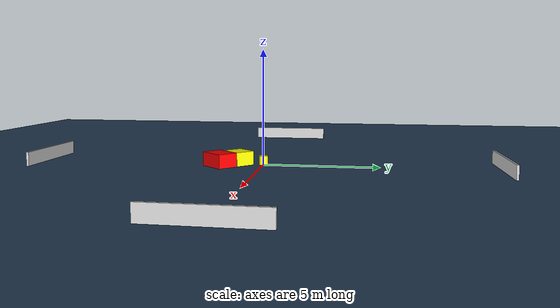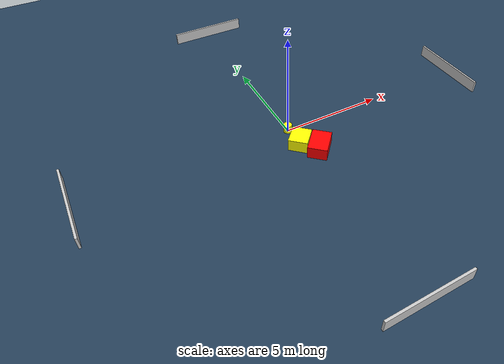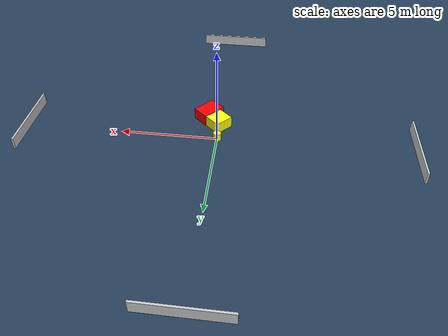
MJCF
<?xml version="1.0" ?>
<mujoco model="generated_environment">
  <option timestep="0.01" integrator="RK4" cone="elliptic"/>
  <default>
    <geom density="1"/>
  </default>
  <asset>
    <texture builtin="gradient" height="3072" name="skybox" rgb1="0.3 0.5 0.7" rgb2="0 0 0" type="skybox" width="512"/>
    <texture builtin="checker" height="300" name="groundplane" rgb1="0.2 0.3 0.4" rgb2="0.1 0.2 0.3" type="2d" width="300"/>
    <material name="groundplane" reflectance="0.2" texrepeat="5 5" texture="groundplane"/>
  </asset>
  <worldbody>
    <light dir="0 0 -1" directional="true" pos="0 0 1.5"/>
    <geom condim="3" friction="0.5 0.005 0.001" material="groundplane" name="floor" pos="0 0 0" size="0 0 0.05" type="plane"/>
    <body name="walls">
      <geom name="wall_1" condim="4" pos="-10.0 0.0 0.3" rgba="0.800000011920929 0.800000011920929 0.800000011920929 1.0" size="0.05 2.0 0.3" type="box"/>
      <geom name="wall_2" condim="4" pos="10.0 0.0 0.3" rgba="0.800000011920929 0.800000011920929 0.800000011920929 1.0" size="0.05 2.0 0.3" type="box"/>
      <geom name="wall_3" condim="4" pos="0.0 -10.0 0.3" rgba="0.800000011920929 0.800000011920929 0.800000011920929 1.0" size="2.0 0.05 0.3" type="box"/>
      <geom name="wall_4" condim="4" pos="0.0 10.0 0.3" rgba="0.800000011920929 0.800000011920929 0.800000011920929 1.0" size="2.0 0.05 0.3" type="box"/>
    </body>
    <body name="robot">
      <joint name="joint_x" type="slide" pos="0 0 0" axis="1 0 0"/>
      <joint name="joint_y" type="slide" pos="0 0 0" axis="0 1 0"/>
      <geom name="robot" type="cylinder" pos="0.0 0.0 0.2" size="0.2 0.2 0.0" mass="5.0" friction="1.0 0.005 0.0001" condim="4" rgba="1.0 1.0 0.0 1.0"/>
    </body>
    <body name="obstacle_1_movable">
      <geom name="obstacle_1_movable" condim="4" pos="0.04385755904241608 -1.09432417430586 0.3" euler="0 0 227.03707228986602" friction="0.0 0.005 0.001" rgba="1.0 1.0 0.0 1.0" size="0.4901350385471341 0.45101307871589974 0.3" type="box" mass="0.1"/>
      <joint type="free"/>
    </body>
    <body name="obstacle_2_static">
      <geom name="obstacle_2_static" condim="4" pos="0.6562883337168728 -1.8119374816234706 0.3" euler="0 0 47.937603590618664" friction="0.0 0.005 0.001" rgba="1.0 0.0 0.0 1.0" size="0.6251773692470257 0.4523331072288657 0.3" type="box"/>
    </body>
  </worldbody>
  <actuator>
    <motor name="actuator_x" joint="joint_x" gear="1" ctrlrange="-1 1"/>
    <motor name="actuator_y" joint="joint_y" gear="1" ctrlrange="-1 1"/>
  </actuator>
</mujoco>
